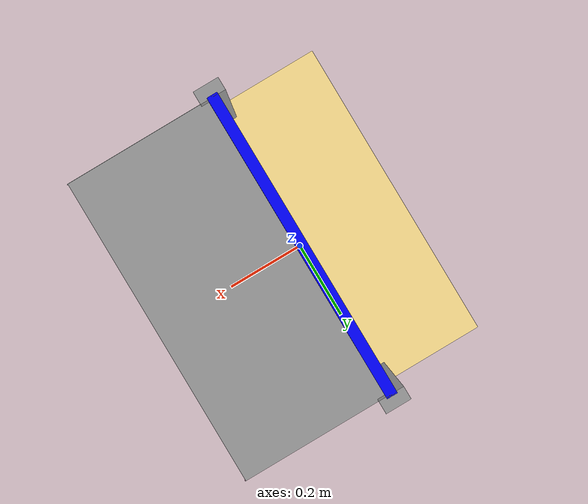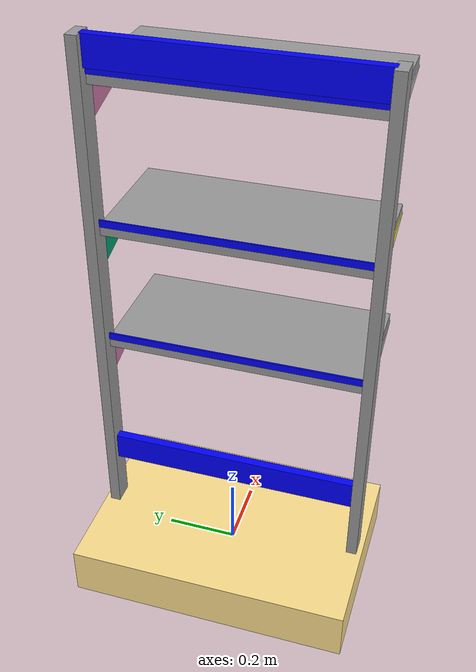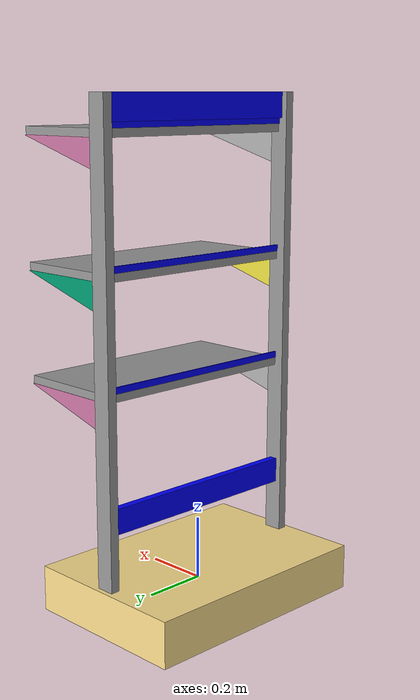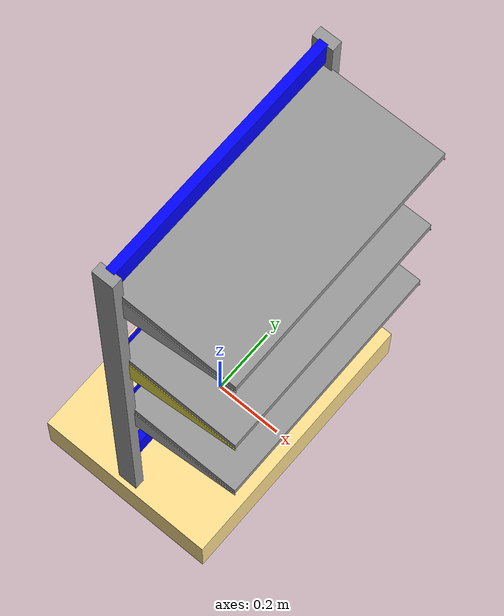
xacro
<?xml version="1.0"?>
<robot name="shelf" xmlns:xacro="http://www.ros.org/wiki/xacro">

<!-- Import Rviz colors -->
<xacro:include filename="$(find table_description)/urdf/materials.xacro" />

<xacro:property name="base_l"  value="0.55"   />
<xacro:property name="base_h"  value="0.8"   />
<xacro:property name="base_w"  value="0.145" />

<xacro:property name="bar_l"  value="0.06"/>
<xacro:property name="bar_h"  value="0.03" />
<xacro:property name="bar_w"  value="1.44" />

<xacro:property name="hbar_l"  value="0.025"/>
<xacro:property name="hbar_h"  value="0.72" />
<xacro:property name="hbar_w"  value="0.08" />

<xacro:property name="shelf_l"  value="0.352"/>
<xacro:property name="shelf_h"  value="0.72" />
<xacro:property name="shelf_w"  value="0.025" />

<xacro:property name="pi" value="3.14159265359"/>

<xacro:macro name="box_I" params="m w h d">
    <inertia ixx="${1/12 * m * (d*d  + h * h)}" ixy="0.0" ixz="0.0" iyy="${1/12 * m * (h * h + w * w)}" iyz="0.0" izz="${1/12 * m * (w * w + d * d)}" />
</xacro:macro>

<xacro:macro name="mybox" params="name l h w color">
   <link name="${name}">
	<visual>
		<origin xyz="0 0 0" rpy="0 0 0"/>
		<geometry>
			<box size="${l} ${h} ${w}"/>
		</geometry>
 		<material name="${color}"/>
        </visual>

	<inertial>
		<origin xyz="0 0 0" rpy="0 0 0"/>
		<mass value="1"/>
		<xacro:box_I m="1.0" w="${w}" h="${h}" d="${l}"/>
	</inertial>

	<collision>
		<origin xyz="0 0 0" rpy="0 0 0"/>
		<geometry>
			<box size="${l} ${h} ${w}"/>
		</geometry>
  	</collision>
  </link>
</xacro:macro>

<!-- MACRO for One Book Shelf -->
<xacro:macro name="shelf" params="name">

<xacro:mybox name="${name}" l="${shelf_l}" h="${shelf_h}" w="${shelf_w}" color="Grey"/>

<link name="${name}_side_one">
	<visual>
		<origin xyz="0 0 0" rpy="0 0 0"/>
		<geometry>
            		<mesh filename="package://table_description/meshes/shelf_part2.dae"/>
          	</geometry>
        </visual>
	<inertial>
		<origin xyz="0 0 0" rpy="0 0 0"/>
		<mass value="1"/>
		<xacro:box_I m="1.0" w="${shelf_w}" h="${shelf_h}" d="${shelf_l}"/>
	</inertial>
	<collision>
		<origin xyz="0 0 0" rpy="0 0 0"/>
		<geometry>
            		<mesh filename="package://table_description/meshes/shelf_part2.dae"/>
          	</geometry>
  	</collision>
</link>

<link name="${name}_side_two">
	<visual>
		<origin xyz="0 0 0" rpy="0 0 0"/>
		<geometry>
            		<mesh filename="package://table_description/meshes/shelf_part2.dae"/>
          	</geometry>
        </visual>
	<inertial>
		<origin xyz="0 0 0" rpy="0 0 0"/>
		<mass value="1"/>
		<xacro:box_I m="1.0" w="${shelf_w}" h="${shelf_h}" d="${shelf_l}"/>
	</inertial>
	<collision>
		<origin xyz="0 0 0" rpy="0 0 0"/>
		<geometry>
            		<mesh filename="package://table_description/meshes/shelf_part2.dae"/>
          	</geometry>
  	</collision>
</link>

<xacro:mybox name="${name}_back_bar" l="0.005" h="${shelf_h}" w="0.02" color="Blue"/>

<joint name="link_${name}_side_one" type="fixed">
	<origin xyz="${0.5*shelf_l} ${-0.5*shelf_h} ${-0.5*shelf_w+0.001}" rpy="0 0 0"/>
	<parent link="${name}"/>
	<child  link="${name}_side_one"/>
</joint>

<joint name="link_${name}_side_two" type="fixed">
	<origin xyz="${0.5*shelf_l} ${0.5*shelf_h} ${-0.5*shelf_w+0.001}" rpy="0 0 0"/>
	<parent link="${name}"/>
	<child  link="${name}_side_two"/>
</joint>

<joint name="link_${name}_back_bar" type="fixed">
	<origin xyz="${0.5*shelf_l} 0 ${0.5*shelf_w+0.5*0.02}" rpy="0 0 0"/>
	<parent link="${name}"/>
	<child  link="${name}_back_bar"/>
</joint>
</xacro:macro>

<xacro:macro name="book_shelf">

	<xacro:mybox name="base" l="${base_l}" h="${base_h}" w="${base_w}" color="Wood"/>

	<xacro:mybox name="left_bar" l="${bar_l}" h="${bar_h}" w="${bar_w}" color="Grey"/>

	<joint name="link_left_bar" type="fixed">
		<origin xyz="0 ${-0.5 * base_h + bar_h} ${0.5 * bar_w + 0.5 * base_w}" rpy="0 0 0"/>
		<parent link="base"/>
		<child  link="left_bar"/>
	</joint>

	<xacro:mybox name="right_bar" l="${bar_l}" h="${bar_h}" w="${bar_w}" color="Grey"/>

	<joint name="link_right_bar" type="fixed">
		<origin xyz="0 ${0.5 * base_h - bar_h} ${0.5 * bar_w + 0.5 * base_w}" rpy="0 0 0"/>
		<parent link="base"/>
		<child  link="right_bar"/>
	</joint>

	<xacro:mybox name="bot_bar" l="${hbar_l}" h="${hbar_h}" w="${hbar_w}" color="Blue"/>

	<joint name="link_bot_bar" type="fixed">
		<origin xyz="0 0 ${0.5*hbar_w + 0.24}" rpy="0 0 0"/>
		<parent link="base"/>
		<child  link="bot_bar"/>
	</joint>

	<xacro:mybox name="top_bar" l="${hbar_l}" h="${hbar_h}" w="${hbar_w}" color="Blue"/>

	<joint name="link_top_bar" type="fixed">
		<origin xyz="0 0 ${bar_w + 0.5 * base_w - 0.5 * hbar_w}" rpy="0 0 0"/>
		<parent link="base"/>
		<child  link="top_bar"/>
	</joint>

</xacro:macro>

<xacro:book_shelf/>

<xacro:shelf name="shelf_one"/>

<xacro:shelf name="shelf_two"/>

<xacro:shelf name="shelf_three"/>

<joint name="link_shelf_one" type="fixed">
	<origin xyz="${0.5*shelf_l} 0 ${0.5*base_w + 0.58}" rpy="0 0 ${pi}"/>
	<parent link="base"/>
	<child  link="shelf_one"/>
</joint>

<joint name="link_shelf_two" type="fixed">
	<origin xyz="${0.5*shelf_l} 0 ${0.5*base_w + 0.93}" rpy="0 0 ${pi}"/>
	<parent link="base"/>
	<child  link="shelf_two"/>
</joint>

<joint name="link_shelf_three" type="fixed">
	<origin xyz="${0.5*shelf_l} 0 ${0.5*base_w + 1.33}" rpy="0 0 ${pi}"/>
	<parent link="base"/>
	<child  link="shelf_three"/>
</joint>

</robot>

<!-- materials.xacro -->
<robot>

<material name="red">
   <color rgba="0.8 0.0 0.0 1.0"/>
</material>

<material name="Grey">
   <color rgba="0.6 0.6 0.6 1.0"/>
</material>

<material name="Black">
 	<color rgba="0.0 0.0 0.0 1"/>
</material>

<material name="Blue">
 	<color rgba="0.0 0.0 1.0 1"/>
</material>

 		<material name="Wood">
 			<color rgba="1 0.88 0.56 1"/>
        	</material>

</robot>
